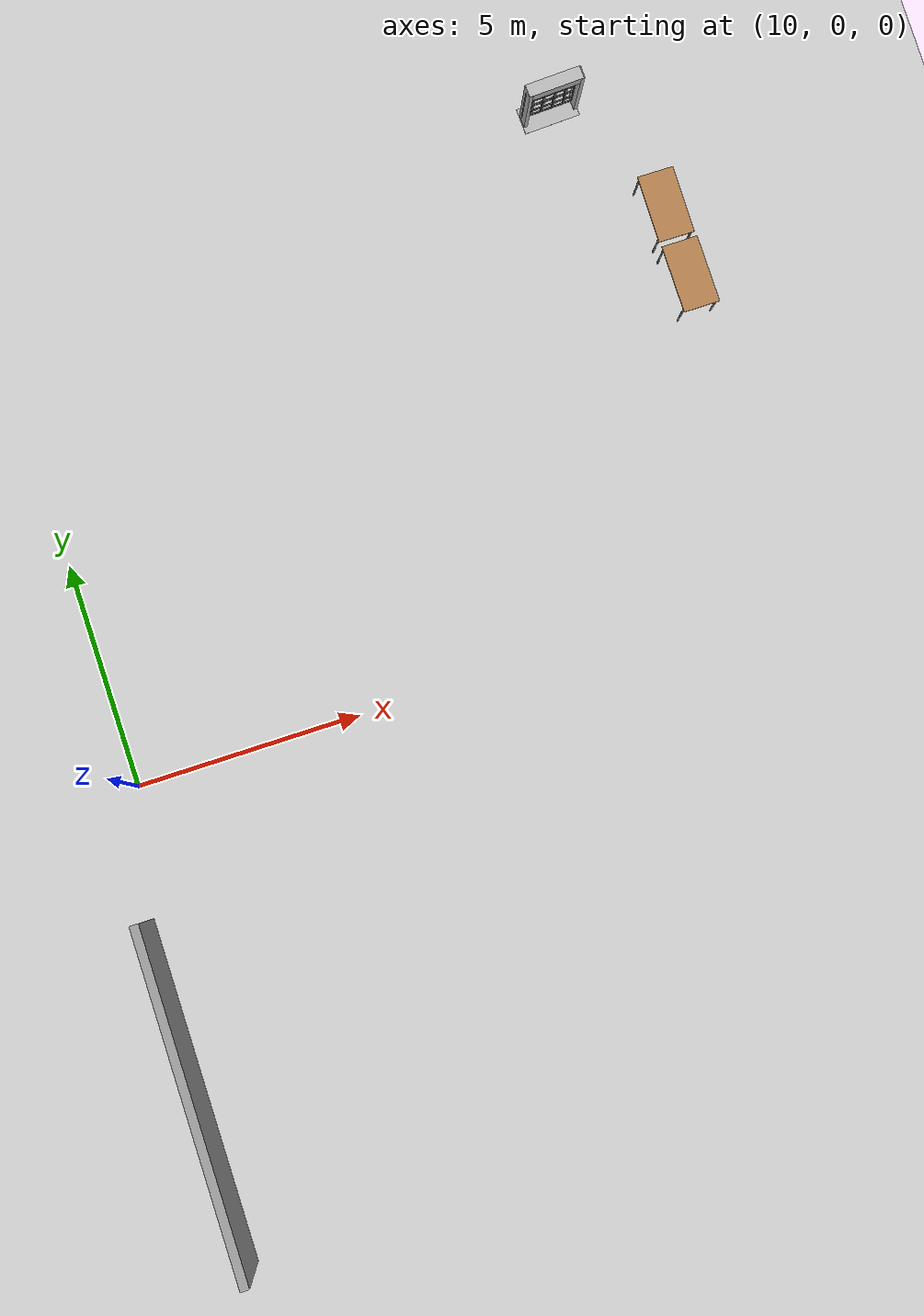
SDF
<sdf version="1.4">
 <world name="default">
  <model name="ground_plane">
   <static>1</static>
   <link name="link">
    <collision name="collision">
     <geometry><plane><normal>0 0 1</normal><size>100 100</size></plane></geometry>
     <surface><friction><ode><mu>100</mu><mu2>50</mu2></ode></friction></surface>
    </collision>
    <visual name="visual">
     <cast_shadows>0</cast_shadows>
     <geometry><plane><normal>0 0 1</normal><size>100 100</size></plane></geometry>
     <material>
      <script><uri>file://media/materials/scripts/gazebo.material</uri><name>Gazebo/Grey</name></script>
     </material>
    </visual>
    <velocity_decay><linear>0</linear><angular>0</angular></velocity_decay>
   </link>
  </model>
  <model name="grey_wall">
   <static>1</static>
   <link name="link">
    <pose>0 0 1.4 0 -0 0</pose>
    <collision name="collision"><geometry><box><size>7.5 0.2 2.8</size></box></geometry></collision>
    <visual name="visual">
     <cast_shadows>0</cast_shadows>
     <geometry><box><size>7.5 0.2 2.8</size></box></geometry>
     <material>
      <script>
       <uri>model://grey_wall/materials/scripts</uri>
       <uri>model://grey_wall/materials/textures</uri>
       <name>vrc/grey_wall</name>
      </script>
     </material>
    </visual>
    <velocity_decay><linear>0</linear><angular>0</angular></velocity_decay>
   </link>
   <pose>9.36447 -6.53474 0 0 0 -1.57522</pose>
  </model>
  <model name="table">
   <static>1</static>
   <link name="link">
    <collision name="surface">
     <pose>0 0 1 0 -0 0</pose>
     <geometry><box><size>1.5 0.8 0.03</size></box></geometry>
     <surface><friction><ode><mu>0.6</mu><mu2>0.6</mu2></ode></friction></surface>
    </collision>
    <visual name="visual1">
     <pose>0 0 1 0 -0 0</pose>
     <geometry><box><size>1.5 0.8 0.03</size></box></geometry>
     <material>
      <script><uri>file://media/materials/scripts/gazebo.material</uri><name>Gazebo/Wood</name></script>
     </material>
    </visual>
    <collision name="front_left_leg">
     <pose>0.68 0.38 0.5 0 -0 0</pose>
     <geometry><cylinder><radius>0.02</radius><length>1</length></cylinder></geometry>
    </collision>
    <visual name="front_left_leg">
     <pose>0.68 0.38 0.5 0 -0 0</pose>
     <geometry><cylinder><radius>0.02</radius><length>1</length></cylinder></geometry>
     <material>
      <script><uri>file://media/materials/scripts/gazebo.material</uri><name>Gazebo/Grey</name></script>
     </material>
    </visual>
    <collision name="front_right_leg">
     <pose>0.68 -0.38 0.5 0 -0 0</pose>
     <geometry><cylinder><radius>0.02</radius><length>1</length></cylinder></geometry>
    </collision>
    <visual name="front_right_leg">
     <pose>0.68 -0.38 0.5 0 -0 0</pose>
     <geometry><cylinder><radius>0.02</radius><length>1</length></cylinder></geometry>
     <material>
      <script><uri>file://media/materials/scripts/gazebo.material</uri><name>Gazebo/Grey</name></script>
     </material>
    </visual>
    <collision name="back_right_leg">
     <pose>-0.68 -0.38 0.5 0 -0 0</pose>
     <geometry><cylinder><radius>0.02</radius><length>1</length></cylinder></geometry>
    </collision>
    <visual name="back_right_leg">
     <pose>-0.68 -0.38 0.5 0 -0 0</pose>
     <geometry><cylinder><radius>0.02</radius><length>1</length></cylinder></geometry>
     <material>
      <script><uri>file://media/materials/scripts/gazebo.material</uri><name>Gazebo/Grey</name></script>
     </material>
    </visual>
    <collision name="back_left_leg">
     <pose>-0.68 0.38 0.5 0 -0 0</pose>
     <geometry><cylinder><radius>0.02</radius><length>1</length></cylinder></geometry>
    </collision>
    <visual name="back_left_leg">
     <pose>-0.68 0.38 0.5 0 -0 0</pose>
     <geometry><cylinder><radius>0.02</radius><length>1</length></cylinder></geometry>
     <material>
      <script><uri>file://media/materials/scripts/gazebo.material</uri><name>Gazebo/Grey</name></script>
     </material>
    </visual>
    <velocity_decay><linear>0</linear><angular>0</angular></velocity_decay>
   </link>
   <pose>24.6223 6.79371 0 0 0 -1.56769</pose>
  </model>
  <model name="table_1">
   <static>1</static>
   <link name="link">
    <collision name="surface">
     <pose>0 0 1 0 -0 0</pose>
     <geometry><box><size>1.5 0.8 0.03</size></box></geometry>
     <surface><friction><ode><mu>0.6</mu><mu2>0.6</mu2></ode></friction></surface>
    </collision>
    <visual name="visual1">
     <pose>0 0 1 0 -0 0</pose>
     <geometry><box><size>1.5 0.8 0.03</size></box></geometry>
     <material>
      <script><uri>file://media/materials/scripts/gazebo.material</uri><name>Gazebo/Wood</name></script>
     </material>
    </visual>
    <collision name="front_left_leg">
     <pose>0.68 0.38 0.5 0 -0 0</pose>
     <geometry><cylinder><radius>0.02</radius><length>1</length></cylinder></geometry>
    </collision>
    <visual name="front_left_leg">
     <pose>0.68 0.38 0.5 0 -0 0</pose>
     <geometry><cylinder><radius>0.02</radius><length>1</length></cylinder></geometry>
     <material>
      <script><uri>file://media/materials/scripts/gazebo.material</uri><name>Gazebo/Grey</name></script>
     </material>
    </visual>
    <collision name="front_right_leg">
     <pose>0.68 -0.38 0.5 0 -0 0</pose>
     <geometry><cylinder><radius>0.02</radius><length>1</length></cylinder></geometry>
    </collision>
    <visual name="front_right_leg">
     <pose>0.68 -0.38 0.5 0 -0 0</pose>
     <geometry><cylinder><radius>0.02</radius><length>1</length></cylinder></geometry>
     <material>
      <script><uri>file://media/materials/scripts/gazebo.material</uri><name>Gazebo/Grey</name></script>
     </material>
    </visual>
    <collision name="back_right_leg">
     <pose>-0.68 -0.38 0.5 0 -0 0</pose>
     <geometry><cylinder><radius>0.02</radius><length>1</length></cylinder></geometry>
    </collision>
    <visual name="back_right_leg">
     <pose>-0.68 -0.38 0.5 0 -0 0</pose>
     <geometry><cylinder><radius>0.02</radius><length>1</length></cylinder></geometry>
     <material>
      <script><uri>file://media/materials/scripts/gazebo.material</uri><name>Gazebo/Grey</name></script>
     </material>
    </visual>
    <collision name="back_left_leg">
     <pose>-0.68 0.38 0.5 0 -0 0</pose>
     <geometry><cylinder><radius>0.02</radius><length>1</length></cylinder></geometry>
    </collision>
    <visual name="back_left_leg">
     <pose>-0.68 0.38 0.5 0 -0 0</pose>
     <geometry><cylinder><radius>0.02</radius><length>1</length></cylinder></geometry>
     <material>
      <script><uri>file://media/materials/scripts/gazebo.material</uri><name>Gazebo/Grey</name></script>
     </material>
    </visual>
    <velocity_decay><linear>0</linear><angular>0</angular></velocity_decay>
   </link>
   <pose>24.6027 8.40542 0 0 0 -1.57795</pose>
  </model>
  <model name="frc2016_portcullis">
   <link name="base">
    <inertial>
     <mass>50</mass>
     <pose>0 0 1.02941 0 -0 0</pose>
     <inertia><ixx>3.81711</ixx><ixy>0</ixy><ixz>0</ixz><iyy>4.87698</iyy><iyz>0</iyz><izz>1.6283</izz></inertia>
    </inertial>
    <visual name="platform">
     <pose>0 0 0.07284 0 -0 0</pose>
     <geometry><box><size>1.27 0.5842 0.003175</size></box></geometry>
    </visual>
    <collision name="platform">
     <pose>0 0 0.07284 0 -0 0</pose>
     <geometry><box><size>1.27 0.5842 0.003175</size></box></geometry>
    </collision>
    <visual name="left_column">
     <pose>0.59284 0 0.99042 0 -0 0</pose>
     <geometry><box><size>0.08375 0.28575 1.83198</size></box></geometry>
    </visual>
    <collision name="left_column">
     <pose>0.59284 0 0.99042 0 -0 0</pose>
     <geometry><box><size>0.08375 0.28575 1.83198</size></box></geometry>
    </collision>
    <visual name="right_column">
     <pose>-0.57759 0 0.99042 0 -0 0</pose>
     <geometry><box><size>0.08375 0.28575 1.83198</size></box></geometry>
    </visual>
    <collision name="right_column">
     <pose>-0.57759 0 0.99042 0 -0 0</pose>
     <geometry><box><size>0.08375 0.28575 1.83198</size></box></geometry>
    </collision>
    <visual name="top">
     <pose>-0.00034 0 1.77722 0 -0 0</pose>
     <geometry><box><size>1.22962 0.28575 0.26657</size></box></geometry>
    </visual>
    <collision name="top">
     <pose>-0.00034 0 1.77722 0 -0 0</pose>
     <geometry><box><size>1.22962 0.28575 0.26657</size></box></geometry>
    </collision>
    <visual name="castor1">
     <pose>-0.45651 -0.16234 0.03272 0 -0 0</pose>
     <geometry><sphere><radius>0.03272</radius></sphere></geometry>
    </visual>
    <collision name="castor1">
     <pose>-0.45651 -0.16234 0.03272 0 -0 0</pose>
     <geometry><sphere><radius>0.03272</radius></sphere></geometry>
    </collision>
    <visual name="castor2">
     <pose>-0.27883 0.21836 0.03272 0 -0 0</pose>
     <geometry><sphere><radius>0.03272</radius></sphere></geometry>
    </visual>
    <collision name="castor2">
     <pose>-0.27883 0.21836 0.03272 0 -0 0</pose>
     <geometry><sphere><radius>0.03272</radius></sphere></geometry>
    </collision>
    <visual name="castor3">
     <pose>0.28083 0.21906 0.03272 0 -0 0</pose>
     <geometry><sphere><radius>0.03272</radius></sphere></geometry>
    </visual>
    <collision name="castor3">
     <pose>0.28083 0.21906 0.03272 0 -0 0</pose>
     <geometry><sphere><radius>0.03272</radius></sphere></geometry>
    </collision>
    <visual name="castor4">
     <pose>0.45871 -0.16186 0.03272 0 -0 0</pose>
     <geometry><sphere><radius>0.03272</radius></sphere></geometry>
    </visual>
    <collision name="castor4">
     <pose>0.45871 -0.16186 0.03272 0 -0 0</pose>
     <geometry><sphere><radius>0.03272</radius></sphere></geometry>
    </collision>
    <velocity_decay><linear>0</linear><angular>0</angular></velocity_decay>
   </link>
   <link name="gate">
    <pose>-0.0287 0.02885 0.93327 0 -0 0</pose>
    <inertial>
     <mass>2</mass>
     <inertia><ixx>3.81711</ixx><ixy>0</ixy><ixz>0</ixz><iyy>4.87698</iyy><iyz>0</iyz><izz>1.6283</izz></inertia>
    </inertial>
    <collision name="collision"><geometry><box><size>1.1938 0.02496 1.45732</size></box></geometry></collision>
    <visual name="horz_1">
     <pose>0 0 -0.70326 0 -0 0</pose>
     <geometry><box><size>1.1938 0.02496 0.0508</size></box></geometry>
     <material><ambient>0.4 0.4 0.4 1</ambient><diffuse>0.4 0.4 0.4 1</diffuse></material>
    </visual>
    <visual name="horz_2">
     <pose>0 0 -0.44926 0 -0 0</pose>
     <geometry><box><size>1.1938 0.02496 0.0508</size></box></geometry>
     <material><ambient>0.4 0.4 0.4 1</ambient><diffuse>0.4 0.4 0.4 1</diffuse></material>
    </visual>
    <visual name="horz_3">
     <pose>0 0 -0.14517 0 -0 0</pose>
     <geometry><box><size>1.1938 0.02496 0.0508</size></box></geometry>
     <material><ambient>0.4 0.4 0.4 1</ambient><diffuse>0.4 0.4 0.4 1</diffuse></material>
    </visual>
    <visual name="horz_4">
     <pose>0 0 0.16034 0 -0 0</pose>
     <geometry><box><size>1.1938 0.02496 0.0508</size></box></geometry>
     <material><ambient>0.4 0.4 0.4 1</ambient><diffuse>0.4 0.4 0.4 1</diffuse></material>
    </visual>
    <visual name="horz_5">
     <pose>0 0 0.46514 0 -0 0</pose>
     <geometry><box><size>1.1938 0.02496 0.0508</size></box></geometry>
     <material><ambient>0.4 0.4 0.4 1</ambient><diffuse>0.4 0.4 0.4 1</diffuse></material>
    </visual>
    <visual name="horz_6">
     <pose>0 0 0.72994 0 -0 0</pose>
     <geometry><box><size>1.1938 0.02496 0.0508</size></box></geometry>
     <material><ambient>0.4 0.4 0.4 1</ambient><diffuse>0.4 0.4 0.4 1</diffuse></material>
    </visual>
    <visual name="vert_1">
     <pose>-0.58448 0 0 0 -0 0</pose>
     <geometry><box><size>0.02495 0.02496 1.45732</size></box></geometry>
     <material><ambient>0.4 0.4 0.4 1</ambient><diffuse>0.4 0.4 0.4 1</diffuse></material>
    </visual>
    <visual name="vert_2">
     <pose>-0.38128 0 0 0 -0 0</pose>
     <geometry><box><size>0.0508 0.02496 1.45732</size></box></geometry>
     <material><ambient>0.4 0.4 0.4 1</ambient><diffuse>0.4 0.4 0.4 1</diffuse></material>
    </visual>
    <visual name="vert_3">
     <pose>-0.12728 0 0 0 -0 0</pose>
     <geometry><box><size>0.0508 0.02496 1.45732</size></box></geometry>
     <material><ambient>0.4 0.4 0.4 1</ambient><diffuse>0.4 0.4 0.4 1</diffuse></material>
    </visual>
    <visual name="vert_4">
     <pose>0.12672 0 0 0 -0 0</pose>
     <geometry><box><size>0.0508 0.02496 1.45732</size></box></geometry>
     <material><ambient>0.4 0.4 0.4 1</ambient><diffuse>0.4 0.4 0.4 1</diffuse></material>
    </visual>
    <visual name="vert_5">
     <pose>0.38072 0 0 0 -0 0</pose>
     <geometry><box><size>0.0508 0.02496 1.45732</size></box></geometry>
     <material><ambient>0.4 0.4 0.4 1</ambient><diffuse>0.4 0.4 0.4 1</diffuse></material>
    </visual>
    <visual name="vert_6">
     <pose>0.58392 0 0 0 -0 0</pose>
     <geometry><box><size>0.02495 0.02496 1.45732</size></box></geometry>
     <material><ambient>0.4 0.4 0.4 1</ambient><diffuse>0.4 0.4 0.4 1</diffuse></material>
    </visual>
    <velocity_decay><linear>0</linear><angular>0</angular></velocity_decay>
   </link>
   <joint name="joint" type="prismatic">
    <parent>base</parent>
    <child>gate</child>
    <axis><xyz>0 0 1</xyz><limit><lower>0</lower><upper>1</upper></limit></axis>
   </joint>
   <pose>23.0014 11.4159 -2e-06 -3e-06 -3e-06 0.043278</pose>
   <static>0</static>
  </model>
 </world>
</sdf>
